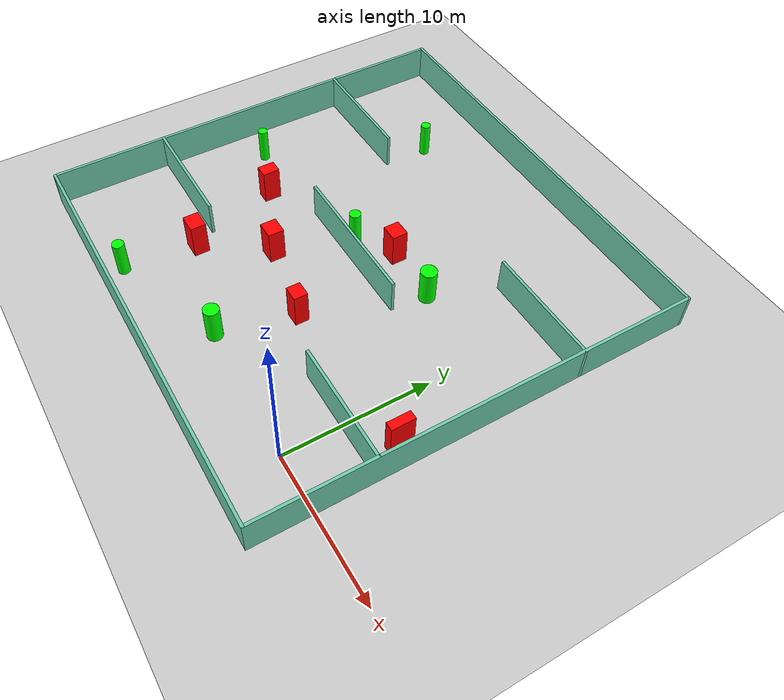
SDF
<sdf version="1.7">
 <world name="default">
  <light name="sun" type="directional">
   <pose>0 0 10 0 -0 0</pose>
   <diffuse>0.8 0.8 0.8 1</diffuse>
   <specular>0.2 0.2 0.2 1</specular>
   <attenuation>
    <range>1000</range>
    <constant>0.9</constant>
    <linear>0.01</linear>
    <quadratic>0.001</quadratic>
   </attenuation>
   <direction>-0.5 0.1 -0.9</direction>
   <spot><inner_angle>0</inner_angle><outer_angle>0</outer_angle><falloff>0</falloff></spot>
  </light>
  <model name="ground_plane">
   <static>1</static>
   <link name="link">
    <collision name="collision">
     <geometry><plane><normal>0 0 1</normal><size>100 100</size></plane></geometry>
     <surface>
      <contact><collide_bitmask>65535</collide_bitmask></contact>
      <friction><ode><mu>100</mu><mu2>50</mu2></ode></friction>
     </surface>
    </collision>
    <visual name="visual">
     <cast_shadows>0</cast_shadows>
     <geometry><plane><normal>0 0 1</normal><size>100 100</size></plane></geometry>
     <material>
      <script><uri>file://media/materials/scripts/gazebo.material</uri><name>Gazebo/Grey</name></script>
     </material>
    </visual>
   </link>
  </model>
  <gravity>0 0 -9.8</gravity>
  <magnetic_field>6e-06 2.3e-05 -4.2e-05</magnetic_field>
  <atmosphere type="adiabatic"/>
  <physics type="ode">
   <max_step_size>0.001</max_step_size>
   <real_time_factor>1</real_time_factor>
   <real_time_update_rate>1000</real_time_update_rate>
  </physics>
  <scene><ambient>0.4 0.4 0.4 1</ambient><background>0.7 0.7 0.7 1</background><shadows>1</shadows></scene>
  <spherical_coordinates>
   <surface_model>EARTH_WGS84</surface_model>
   <latitude_deg>0</latitude_deg>
   <longitude_deg>0</longitude_deg>
   <elevation>0</elevation>
   <heading_deg>0</heading_deg>
  </spherical_coordinates>
  <model name="my_base_walls">
   <link name="Wall_10">
    <collision name="Wall_10_Collision">
     <geometry><box><size>8.2 0.2 2.5</size></box></geometry>
     <pose>0 0 1.25 0 -0 0</pose>
    </collision>
    <visual name="Wall_10_Visual">
     <pose>0 0 1.25 0 -0 0</pose>
     <geometry><box><size>8.2 0.2 2.5</size></box></geometry>
     <material>
      <script><uri>file://media/materials/scripts/gazebo.material</uri><name>Gazebo/Grey</name></script>
      <ambient>0.435294 0.796078 0.67451 1</ambient>
     </material>
     <meta><layer>0</layer></meta>
    </visual>
    <pose>-11 -7 0 0 -0 0</pose>
   </link>
   <link name="Wall_12">
    <collision name="Wall_12_Collision">
     <geometry><box><size>8.2 0.2 2.5</size></box></geometry>
     <pose>0 0 1.25 0 -0 0</pose>
    </collision>
    <visual name="Wall_12_Visual">
     <pose>0 0 1.25 0 -0 0</pose>
     <geometry><box><size>8.2 0.2 2.5</size></box></geometry>
     <material>
      <script><uri>file://media/materials/scripts/gazebo.material</uri><name>Gazebo/Grey</name></script>
      <ambient>0.435294 0.796078 0.67451 1</ambient>
     </material>
     <meta><layer>0</layer></meta>
    </visual>
    <pose>-11 7 0 0 -0 0</pose>
   </link>
   <link name="Wall_14">
    <collision name="Wall_14_Collision">
     <geometry><box><size>8.2 0.2 2.5</size></box></geometry>
     <pose>0 0 1.25 0 -0 0</pose>
    </collision>
    <visual name="Wall_14_Visual">
     <pose>0 0 1.25 0 -0 0</pose>
     <geometry><box><size>8.2 0.2 2.5</size></box></geometry>
     <material>
      <script><uri>file://media/materials/scripts/gazebo.material</uri><name>Gazebo/Grey</name></script>
      <ambient>0.435294 0.796078 0.67451 1</ambient>
     </material>
     <meta><layer>0</layer></meta>
    </visual>
    <pose>11 7 0 0 -0 3.14159</pose>
   </link>
   <link name="Wall_16">
    <collision name="Wall_16_Collision">
     <geometry><box><size>10.2 0.2 2.5</size></box></geometry>
     <pose>0 0 1.25 0 -0 0</pose>
    </collision>
    <visual name="Wall_16_Visual">
     <pose>0 0 1.25 0 -0 0</pose>
     <geometry><box><size>10.2 0.2 2.5</size></box></geometry>
     <material>
      <script><uri>file://media/materials/scripts/gazebo.material</uri><name>Gazebo/Grey</name></script>
      <ambient>0.435294 0.796078 0.67451 1</ambient>
     </material>
     <meta><layer>0</layer></meta>
    </visual>
    <pose>0 0 0 0 -0 3.14159</pose>
   </link>
   <link name="Wall_2">
    <collision name="Wall_2_Collision">
     <geometry><box><size>30.2 0.2 2.5</size></box></geometry>
     <pose>0 0 1.25 0 -0 0</pose>
    </collision>
    <visual name="Wall_2_Visual">
     <pose>0 0 1.25 0 -0 0</pose>
     <geometry><box><size>30.2 0.2 2.5</size></box></geometry>
     <material>
      <script><uri>file://media/materials/scripts/gazebo.material</uri><name>Gazebo/Grey</name></script>
      <ambient>0.435294 0.796078 0.67451 1</ambient>
     </material>
     <meta><layer>0</layer></meta>
    </visual>
    <pose>0 -15 0 0 -0 3.14159</pose>
   </link>
   <link name="Wall_3">
    <collision name="Wall_3_Collision">
     <geometry><box><size>30.2 0.2 2.5</size></box></geometry>
     <pose>0 0 1.25 0 -0 0</pose>
    </collision>
    <visual name="Wall_3_Visual">
     <pose>0 0 1.25 0 -0 0</pose>
     <geometry><box><size>30.2 0.2 2.5</size></box></geometry>
     <material>
      <script><uri>file://media/materials/scripts/gazebo.material</uri><name>Gazebo/Grey</name></script>
      <ambient>0.435294 0.796078 0.67451 1</ambient>
     </material>
     <meta><layer>0</layer></meta>
    </visual>
    <pose>-15 0 0 0 -0 1.5708</pose>
   </link>
   <link name="Wall_4">
    <collision name="Wall_4_Collision">
     <geometry><box><size>30.2 0.2 2.5</size></box></geometry>
     <pose>0 0 1.25 0 -0 0</pose>
    </collision>
    <visual name="Wall_4_Visual">
     <pose>0 0 1.25 0 -0 0</pose>
     <geometry><box><size>30.2 0.2 2.5</size></box></geometry>
     <material>
      <script><uri>file://media/materials/scripts/gazebo.material</uri><name>Gazebo/Grey</name></script>
      <ambient>0.435294 0.796078 0.67451 1</ambient>
     </material>
     <meta><layer>0</layer></meta>
    </visual>
    <pose>0 15 0 0 -0 0</pose>
   </link>
   <link name="Wall_6">
    <collision name="Wall_6_Collision">
     <geometry><box><size>30.2 0.2 2.5</size></box></geometry>
     <pose>0 0 1.25 0 -0 0</pose>
    </collision>
    <visual name="Wall_6_Visual">
     <pose>0 0 1.25 0 -0 0</pose>
     <geometry><box><size>30.2 0.2 2.5</size></box></geometry>
     <material>
      <script><uri>file://media/materials/scripts/gazebo.material</uri><name>Gazebo/Grey</name></script>
      <ambient>0.435294 0.796078 0.67451 1</ambient>
     </material>
     <meta><layer>0</layer></meta>
    </visual>
    <pose>15 0 0 0 -0 1.5708</pose>
   </link>
   <link name="Wall_8">
    <collision name="Wall_8_Collision">
     <geometry><box><size>8.2 0.2 2.5</size></box></geometry>
     <pose>0 0 1.25 0 -0 0</pose>
    </collision>
    <visual name="Wall_8_Visual">
     <pose>0 0 1.25 0 -0 0</pose>
     <geometry><box><size>8.2 0.2 2.5</size></box></geometry>
     <material>
      <script><uri>file://media/materials/scripts/gazebo.material</uri><name>Gazebo/Grey</name></script>
      <ambient>0.435294 0.796078 0.67451 1</ambient>
     </material>
     <meta><layer>0</layer></meta>
    </visual>
    <pose>11 -7 0 0 -0 3.14159</pose>
   </link>
   <static>1</static>
   <pose>-11 11 0 0 -0 0</pose>
  </model>
  <model name="cylinder1">
   <static>1</static>
   <link name="link">
    <inertial>
     <mass>1</mass>
     <inertia><ixx>0.5</ixx><ixy>0</ixy><ixz>0</ixz><iyy>0.5</iyy><iyz>0</iyz><izz>1</izz></inertia>
    </inertial>
    <collision name="collision">
     <geometry><cylinder><radius>0.5582882200538601</radius><length>2.5</length></cylinder></geometry>
    </collision>
    <visual name="visual">
     <geometry><cylinder><radius>0.5582882200538601</radius><length>2.5</length></cylinder></geometry>
     <material>
      <ambient>0 1 0 1</ambient>
      <diffuse>0 1 0 1</diffuse>
      <specular>0.1 0.1 0.1 1</specular>
      <emissive>0 0 0 0</emissive>
     </material>
    </visual>
   </link>
   <pose>-5.715482779227582 13.496893995612123 1.25 0 0 0</pose>
  </model>
  <model name="cylinder2">
   <static>1</static>
   <link name="link">
    <inertial>
     <mass>1</mass>
     <inertia><ixx>0.5</ixx><ixy>0</ixy><ixz>0</ixz><iyy>0.5</iyy><iyz>0</iyz><izz>1</izz></inertia>
    </inertial>
    <collision name="collision">
     <geometry><cylinder><radius>0.3407526047260081</radius><length>2.5</length></cylinder></geometry>
    </collision>
    <visual name="visual">
     <geometry><cylinder><radius>0.3407526047260081</radius><length>2.5</length></cylinder></geometry>
     <material>
      <ambient>0 1 0 1</ambient>
      <diffuse>0 1 0 1</diffuse>
      <specular>0.1 0.1 0.1 1</specular>
      <emissive>0 0 0 0</emissive>
     </material>
    </visual>
   </link>
   <pose>-17.80518300336234 21.09221507804453 1.25 0 0 0</pose>
  </model>
  <model name="cylinder3">
   <static>1</static>
   <link name="link">
    <inertial>
     <mass>1</mass>
     <inertia><ixx>0.5</ixx><ixy>0</ixy><ixz>0</ixz><iyy>0.5</iyy><iyz>0</iyz><izz>1</izz></inertia>
    </inertial>
    <collision name="collision">
     <geometry><cylinder><radius>0.5273335119030937</radius><length>2.5</length></cylinder></geometry>
    </collision>
    <visual name="visual">
     <geometry><cylinder><radius>0.5273335119030937</radius><length>2.5</length></cylinder></geometry>
     <material>
      <ambient>0 1 0 1</ambient>
      <diffuse>0 1 0 1</diffuse>
      <specular>0.1 0.1 0.1 1</specular>
      <emissive>0 0 0 0</emissive>
     </material>
    </visual>
   </link>
   <pose>-9.680402413218712 0.40228225472160517 1.25 0 0 0</pose>
  </model>
  <model name="cylinder4">
   <static>1</static>
   <link name="link">
    <inertial>
     <mass>1</mass>
     <inertia><ixx>0.5</ixx><ixy>0</ixy><ixz>0</ixz><iyy>0.5</iyy><iyz>0</iyz><izz>1</izz></inertia>
    </inertial>
    <collision name="collision">
     <geometry><cylinder><radius>0.3951258910907187</radius><length>2.5</length></cylinder></geometry>
    </collision>
    <visual name="visual">
     <geometry><cylinder><radius>0.3951258910907187</radius><length>2.5</length></cylinder></geometry>
     <material>
      <ambient>0 1 0 1</ambient>
      <diffuse>0 1 0 1</diffuse>
      <specular>0.1 0.1 0.1 1</specular>
      <emissive>0 0 0 0</emissive>
     </material>
    </visual>
   </link>
   <pose>-12.432853464203768 12.046720365696387 1.25 0 0 0</pose>
  </model>
  <model name="cylinder5">
   <static>1</static>
   <link name="link">
    <inertial>
     <mass>1</mass>
     <inertia><ixx>0.5</ixx><ixy>0</ixy><ixz>0</ixz><iyy>0.5</iyy><iyz>0</iyz><izz>1</izz></inertia>
    </inertial>
    <collision name="collision">
     <geometry><cylinder><radius>0.33313823863749875</radius><length>2.5</length></cylinder></geometry>
    </collision>
    <visual name="visual">
     <geometry><cylinder><radius>0.33313823863749875</radius><length>2.5</length></cylinder></geometry>
     <material>
      <ambient>0 1 0 1</ambient>
      <diffuse>0 1 0 1</diffuse>
      <specular>0.1 0.1 0.1 1</specular>
      <emissive>0 0 0 0</emissive>
     </material>
    </visual>
   </link>
   <pose>-23.13434039367478 10.503444537043242 1.25 0 0 0</pose>
  </model>
  <model name="cylinder6">
   <static>1</static>
   <link name="link">
    <inertial>
     <mass>1</mass>
     <inertia><ixx>0.5</ixx><ixy>0</ixy><ixz>0</ixz><iyy>0.5</iyy><iyz>0</iyz><izz>1</izz></inertia>
    </inertial>
    <collision name="collision">
     <geometry><cylinder><radius>0.4073175766832977</radius><length>2.5</length></cylinder></geometry>
    </collision>
    <visual name="visual">
     <geometry><cylinder><radius>0.4073175766832977</radius><length>2.5</length></cylinder></geometry>
     <material>
      <ambient>0 1 0 1</ambient>
      <diffuse>0 1 0 1</diffuse>
      <specular>0.1 0.1 0.1 1</specular>
      <emissive>0 0 0 0</emissive>
     </material>
    </visual>
   </link>
   <pose>-17.65105526005059 -2.549178972240944 1.25 0 0 0</pose>
  </model>
  <model name="box1">
   <static>1</static>
   <link name="link">
    <inertial>
     <mass>1</mass>
     <inertia><ixx>0.083</ixx><ixy>0</ixy><ixz>0</ixz><iyy>0.083</iyy><iyz>0</iyz><izz>0.083</izz></inertia>
    </inertial>
    <collision name="collision">
     <geometry><box><size>1.2995054659606935 1.0623295177931555 2.5</size></box></geometry>
    </collision>
    <visual name="visual">
     <geometry><box><size>1.2995054659606935 1.0623295177931555 2.5</size></box></geometry>
     <material>
      <ambient>1 0 0 1</ambient>
      <diffuse>1 0 0 1</diffuse>
      <specular>0.1 0.1 0.1 1</specular>
      <emissive>0 0 0 0</emissive>
     </material>
    </visual>
    <sensor name="my_contact" type="contact">
     <contact><collision>box_collision</collision><topic>__default_topic__</topic></contact>
    </sensor>
   </link>
   <pose>-17.115877328202597 2.5376279562864905 1.25 0 0 0</pose>
  </model>
  <model name="box2">
   <static>1</static>
   <link name="link">
    <inertial>
     <mass>1</mass>
     <inertia><ixx>0.083</ixx><ixy>0</ixy><ixz>0</ixz><iyy>0.083</iyy><iyz>0</iyz><izz>0.083</izz></inertia>
    </inertial>
    <collision name="collision">
     <geometry><box><size>0.6027393496175619 1.601354443214715 2.5</size></box></geometry>
    </collision>
    <visual name="visual">
     <geometry><box><size>0.6027393496175619 1.601354443214715 2.5</size></box></geometry>
     <material>
      <ambient>1 0 0 1</ambient>
      <diffuse>1 0 0 1</diffuse>
      <specular>0.1 0.1 0.1 1</specular>
      <emissive>0 0 0 0</emissive>
     </material>
    </visual>
    <sensor name="my_contact" type="contact">
     <contact><collision>box_collision</collision><topic>__default_topic__</topic></contact>
    </sensor>
   </link>
   <pose>2.6999851843827507 6.200910402736151 1.25 0 0 0</pose>
  </model>
  <model name="box3">
   <static>1</static>
   <link name="link">
    <inertial>
     <mass>1</mass>
     <inertia><ixx>0.083</ixx><ixy>0</ixy><ixz>0</ixz><iyy>0.083</iyy><iyz>0</iyz><izz>0.083</izz></inertia>
    </inertial>
    <collision name="collision">
     <geometry><box><size>1.2124349872886588 1.0960337846754578 2.5</size></box></geometry>
    </collision>
    <visual name="visual">
     <geometry><box><size>1.2124349872886588 1.0960337846754578 2.5</size></box></geometry>
     <material>
      <ambient>1 0 0 1</ambient>
      <diffuse>1 0 0 1</diffuse>
      <specular>0.1 0.1 0.1 1</specular>
      <emissive>0 0 0 0</emissive>
     </material>
    </visual>
    <sensor name="my_contact" type="contact">
     <contact><collision>box_collision</collision><topic>__default_topic__</topic></contact>
    </sensor>
   </link>
   <pose>-14.04568052327795 6.705076782453274 1.25 0 0 0</pose>
  </model>
  <model name="box4">
   <static>1</static>
   <link name="link">
    <inertial>
     <mass>1</mass>
     <inertia><ixx>0.083</ixx><ixy>0</ixy><ixz>0</ixz><iyy>0.083</iyy><iyz>0</iyz><izz>0.083</izz></inertia>
    </inertial>
    <collision name="collision">
     <geometry><box><size>0.916079034948528 1.1803044654721602 2.5</size></box></geometry>
    </collision>
    <visual name="visual">
     <geometry><box><size>0.916079034948528 1.1803044654721602 2.5</size></box></geometry>
     <material>
      <ambient>1 0 0 1</ambient>
      <diffuse>1 0 0 1</diffuse>
      <specular>0.1 0.1 0.1 1</specular>
      <emissive>0 0 0 0</emissive>
     </material>
    </visual>
    <sensor name="my_contact" type="contact">
     <contact><collision>box_collision</collision><topic>__default_topic__</topic></contact>
    </sensor>
   </link>
   <pose>-19.292152387832154 9.05235406262144 1.25 0 0 0</pose>
  </model>
  <model name="box5">
   <static>1</static>
   <link name="link">
    <inertial>
     <mass>1</mass>
     <inertia><ixx>0.083</ixx><ixy>0</ixy><ixz>0</ixz><iyy>0.083</iyy><iyz>0</iyz><izz>0.083</izz></inertia>
    </inertial>
    <collision name="collision">
     <geometry><box><size>1.1827883923592948 1.078636421880814 2.5</size></box></geometry>
    </collision>
    <visual name="visual">
     <geometry><box><size>1.1827883923592948 1.078636421880814 2.5</size></box></geometry>
     <material>
      <ambient>1 0 0 1</ambient>
      <diffuse>1 0 0 1</diffuse>
      <specular>0.1 0.1 0.1 1</specular>
      <emissive>0 0 0 0</emissive>
     </material>
    </visual>
    <sensor name="my_contact" type="contact">
     <contact><collision>box_collision</collision><topic>__default_topic__</topic></contact>
    </sensor>
   </link>
   <pose>-9.801616960708298 13.572640422258534 1.25 0 0 0</pose>
  </model>
  <model name="box6">
   <static>1</static>
   <link name="link">
    <inertial>
     <mass>1</mass>
     <inertia><ixx>0.083</ixx><ixy>0</ixy><ixz>0</ixz><iyy>0.083</iyy><iyz>0</iyz><izz>0.083</izz></inertia>
    </inertial>
    <collision name="collision">
     <geometry><box><size>1.0799447497029953 0.9546213043006142 2.5</size></box></geometry>
    </collision>
    <visual name="visual">
     <geometry><box><size>1.0799447497029953 0.9546213043006142 2.5</size></box></geometry>
     <material>
      <ambient>1 0 0 1</ambient>
      <diffuse>1 0 0 1</diffuse>
      <specular>0.1 0.1 0.1 1</specular>
      <emissive>0 0 0 0</emissive>
     </material>
    </visual>
    <sensor name="my_contact" type="contact">
     <contact><collision>box_collision</collision><topic>__default_topic__</topic></contact>
    </sensor>
   </link>
   <pose>-8.38673228308124 5.580387433212195 1.25 0 0 0</pose>
  </model>
 </world>
</sdf>
